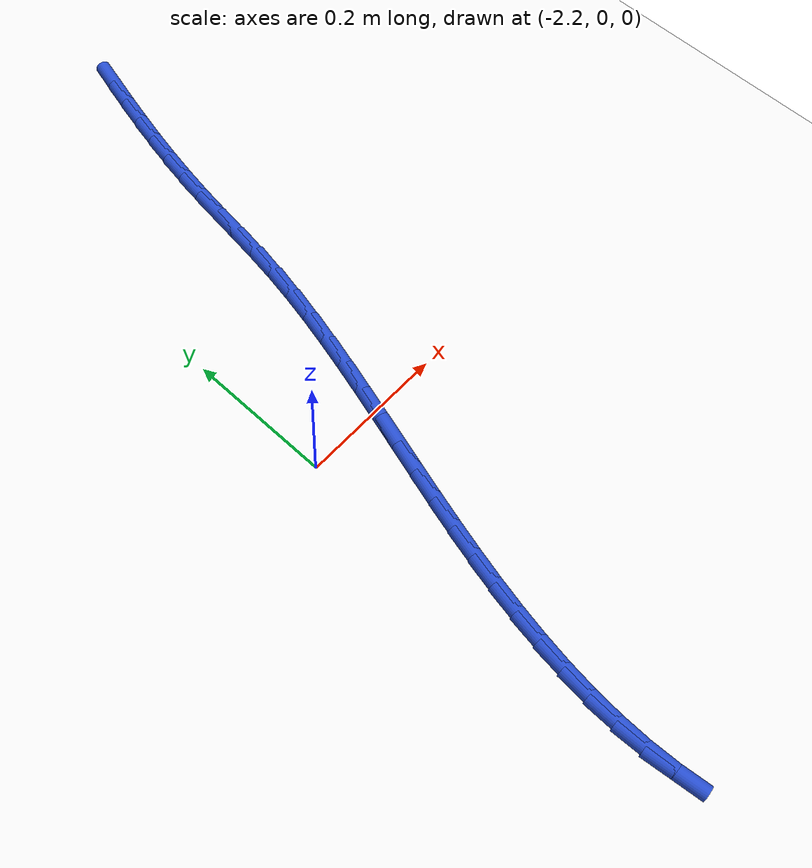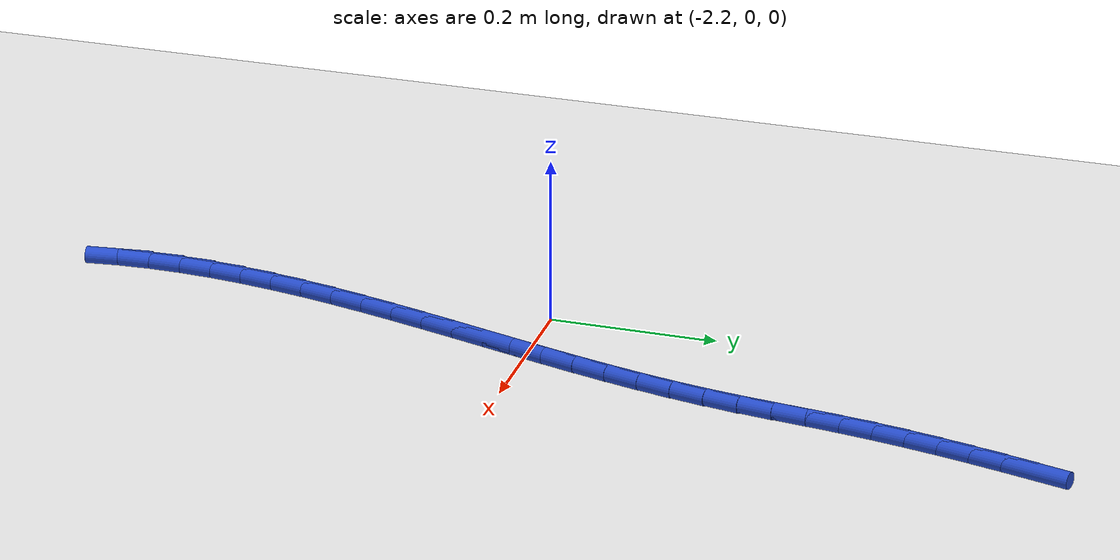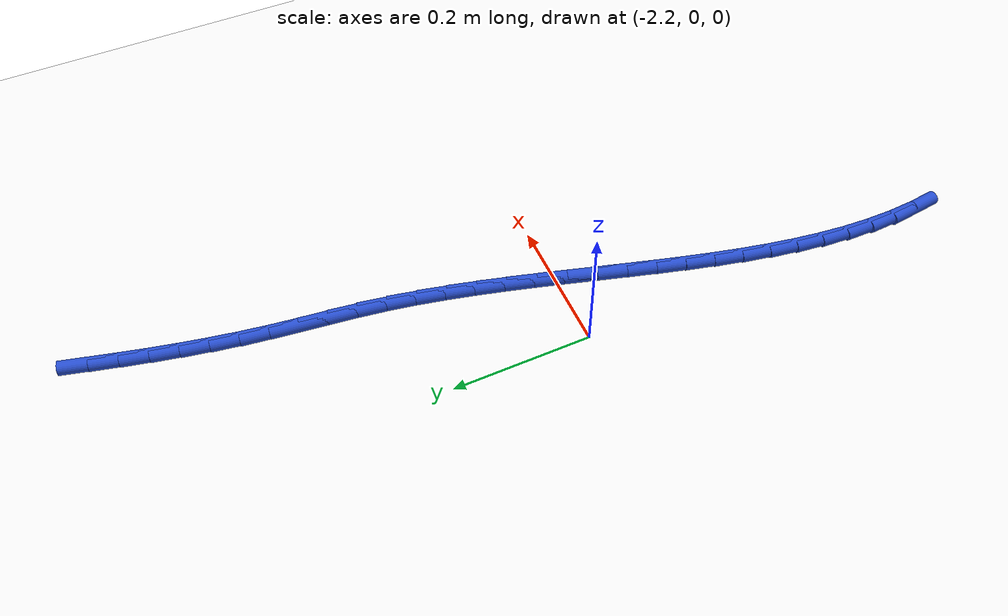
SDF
<sdf version="1.6">
 <world name="default">
  <model name="ground_plane">
   <static>1</static>
   <link name="link">
    <collision name="collision">
     <geometry><plane><normal>0 0 1</normal><size>100 100</size></plane></geometry>
     <surface><friction><ode><mu>100</mu><mu2>50</mu2></ode></friction></surface>
    </collision>
    <visual name="visual">
     <cast_shadows>0</cast_shadows>
     <geometry><plane><normal>0 0 1</normal><size>100 100</size></plane></geometry>
     <material>
      <script><uri>file://media/materials/scripts/gazebo.material</uri><name>Gazebo/WhiteGlow</name></script>
     </material>
    </visual>
   </link>
  </model>
  <model name="line">
   <link name="link_76">
    <pose>-1.968992026490495 0.6249310614358464 0.01 0 1.57 1.316810926799928</pose>
    <collision name="collision">
     <geometry><cylinder><radius>0.01</radius><length>0.08</length></cylinder></geometry>
    </collision>
    <visual name="visual">
     <material>
      <script><name>Gazebo/Blue</name><uri>file://media/materials/scripts/gazebo.material</uri></script>
     </material>
     <geometry><cylinder><radius>0.01</radius><length>0.08</length></cylinder></geometry>
    </visual>
   </link>
   <link name="link_77">
    <pose>-1.9790091456624832 0.5863430544383781 0.01 0 1.57 1.3313389313057982</pose>
    <collision name="collision">
     <geometry><cylinder><radius>0.01</radius><length>0.08</length></cylinder></geometry>
    </collision>
    <visual name="visual">
     <material>
      <script><name>Gazebo/Blue</name><uri>file://media/materials/scripts/gazebo.material</uri></script>
     </material>
     <geometry><cylinder><radius>0.01</radius><length>0.08</length></cylinder></geometry>
    </visual>
   </link>
   <link name="link_78">
    <pose>-1.9883876666445914 0.5479287984855871 0.01 0 1.57 1.348613456572809</pose>
    <collision name="collision">
     <geometry><cylinder><radius>0.01</radius><length>0.08</length></cylinder></geometry>
    </collision>
    <visual name="visual">
     <material>
      <script><name>Gazebo/Blue</name><uri>file://media/materials/scripts/gazebo.material</uri></script>
     </material>
     <geometry><cylinder><radius>0.01</radius><length>0.08</length></cylinder></geometry>
    </visual>
   </link>
   <link name="link_79">
    <pose>-1.9970575559134733 0.509551610148036 0.01 0 1.57 1.3685109553980592</pose>
    <collision name="collision">
     <geometry><cylinder><radius>0.01</radius><length>0.08</length></cylinder></geometry>
    </collision>
    <visual name="visual">
     <material>
      <script><name>Gazebo/Blue</name><uri>file://media/materials/scripts/gazebo.material</uri></script>
     </material>
     <geometry><cylinder><radius>0.01</radius><length>0.08</length></cylinder></geometry>
    </visual>
   </link>
   <link name="link_80">
    <pose>-2.004948779945782 0.47107480599628687 0.01 0 1.57 1.3908483317824356</pose>
    <collision name="collision">
     <geometry><cylinder><radius>0.01</radius><length>0.08</length></cylinder></geometry>
    </collision>
    <visual name="visual">
     <material>
      <script><name>Gazebo/Blue</name><uri>file://media/materials/scripts/gazebo.material</uri></script>
     </material>
     <geometry><cylinder><radius>0.01</radius><length>0.08</length></cylinder></geometry>
    </visual>
   </link>
   <link name="link_81">
    <pose>-2.011991305218171 0.4323617026009032 0.01 0 1.57 1.415385228566214</pose>
    <collision name="collision">
     <geometry><cylinder><radius>0.01</radius><length>0.08</length></cylinder></geometry>
    </collision>
    <visual name="visual">
     <material>
      <script><name>Gazebo/Blue</name><uri>file://media/materials/scripts/gazebo.material</uri></script>
     </material>
     <geometry><cylinder><radius>0.01</radius><length>0.08</length></cylinder></geometry>
    </visual>
   </link>
   <link name="link_82">
    <pose>-2.0181150982072933 0.39327561653244747 0.01 0 1.57 1.4399738764803132</pose>
    <collision name="collision">
     <geometry><cylinder><radius>0.01</radius><length>0.08</length></cylinder></geometry>
    </collision>
    <visual name="visual">
     <material>
      <script><name>Gazebo/Blue</name><uri>file://media/materials/scripts/gazebo.material</uri></script>
     </material>
     <geometry><cylinder><radius>0.01</radius><length>0.08</length></cylinder></geometry>
    </visual>
   </link>
   <link name="link_83">
    <pose>-2.0233217086849318 0.3537038637377302 0.01 0 1.57 1.4519085063891006</pose>
    <collision name="collision">
     <geometry><cylinder><radius>0.01</radius><length>0.08</length></cylinder></geometry>
    </collision>
    <visual name="visual">
     <material>
      <script><name>Gazebo/Blue</name><uri>file://media/materials/scripts/gazebo.material</uri></script>
     </material>
     <geometry><cylinder><radius>0.01</radius><length>0.08</length></cylinder></geometry>
    </visual>
   </link>
   <link name="link_84">
    <pose>-2.0281005359758533 0.3136973190630746 0.01 0 1.57 1.4463514690864652</pose>
    <collision name="collision">
     <geometry><cylinder><radius>0.01</radius><length>0.08</length></cylinder></geometry>
    </collision>
    <visual name="visual">
     <material>
      <script><name>Gazebo/Blue</name><uri>file://media/materials/scripts/gazebo.material</uri></script>
     </material>
     <geometry><cylinder><radius>0.01</radius><length>0.08</length></cylinder></geometry>
    </visual>
   </link>
   <link name="link_85">
    <pose>-2.033144494877859 0.273375088977849 0.01 0 1.57 1.4237324200178538</pose>
    <collision name="collision">
     <geometry><cylinder><radius>0.01</radius><length>0.08</length></cylinder></geometry>
    </collision>
    <visual name="visual">
     <material>
      <script><name>Gazebo/Blue</name><uri>file://media/materials/scripts/gazebo.material</uri></script>
     </material>
     <geometry><cylinder><radius>0.01</radius><length>0.08</length></cylinder></geometry>
    </visual>
   </link>
   <link name="link_86">
    <pose>-2.039146658129589 0.2328564485986555 0.01 0 1.57 1.3900089273853904</pose>
    <collision name="collision">
     <geometry><cylinder><radius>0.01</radius><length>0.08</length></cylinder></geometry>
    </collision>
    <visual name="visual">
     <material>
      <script><name>Gazebo/Blue</name><uri>file://media/materials/scripts/gazebo.material</uri></script>
     </material>
     <geometry><cylinder><radius>0.01</radius><length>0.08</length></cylinder></geometry>
    </visual>
   </link>
   <link name="link_87">
    <pose>-2.0465715702535596 0.19223501597412374 0.01 0 1.57 1.3595765101723378</pose>
    <collision name="collision">
     <geometry><cylinder><radius>0.01</radius><length>0.08</length></cylinder></geometry>
    </collision>
    <visual name="visual">
     <material>
      <script><name>Gazebo/Blue</name><uri>file://media/materials/scripts/gazebo.material</uri></script>
     </material>
     <geometry><cylinder><radius>0.01</radius><length>0.08</length></cylinder></geometry>
    </visual>
   </link>
   <link name="link_88">
    <pose>-2.0552976146788478 0.151538600320735 0.01 0 1.57 1.3345104978542286</pose>
    <collision name="collision">
     <geometry><cylinder><radius>0.01</radius><length>0.08</length></cylinder></geometry>
    </collision>
    <visual name="visual">
     <material>
      <script><name>Gazebo/Blue</name><uri>file://media/materials/scripts/gazebo.material</uri></script>
     </material>
     <geometry><cylinder><radius>0.01</radius><length>0.08</length></cylinder></geometry>
    </visual>
   </link>
   <link name="link_89">
    <pose>-2.0651105102949843 0.11078460732393372 0.01 0 1.57 1.3146155880673216</pose>
    <collision name="collision">
     <geometry><cylinder><radius>0.01</radius><length>0.08</length></cylinder></geometry>
    </collision>
    <visual name="visual">
     <material>
      <script><name>Gazebo/Blue</name><uri>file://media/materials/scripts/gazebo.material</uri></script>
     </material>
     <geometry><cylinder><radius>0.01</radius><length>0.08</length></cylinder></geometry>
    </visual>
   </link>
   <link name="link_90">
    <pose>-2.075795975991503 0.06999044266916296 0.01 0 1.57 1.2997194185854013</pose>
    <collision name="collision">
     <geometry><cylinder><radius>0.01</radius><length>0.08</length></cylinder></geometry>
    </collision>
    <visual name="visual">
     <material>
      <script><name>Gazebo/Blue</name><uri>file://media/materials/scripts/gazebo.material</uri></script>
     </material>
     <geometry><cylinder><radius>0.01</radius><length>0.08</length></cylinder></geometry>
    </visual>
   </link>
   <link name="link_91">
    <pose>-2.087139730657936 0.029173512041866433 0.01 0 1.57 1.2896849483638797</pose>
    <collision name="collision">
     <geometry><cylinder><radius>0.01</radius><length>0.08</length></cylinder></geometry>
    </collision>
    <visual name="visual">
     <material>
      <script><name>Gazebo/Blue</name><uri>file://media/materials/scripts/gazebo.material</uri></script>
     </material>
     <geometry><cylinder><radius>0.01</radius><length>0.08</length></cylinder></geometry>
    </visual>
   </link>
   <link name="link_92">
    <pose>-2.0989274931838175 -0.011648778872513216 0.01 0 1.57 1.2844184457454209</pose>
    <collision name="collision">
     <geometry><cylinder><radius>0.01</radius><length>0.08</length></cylinder></geometry>
    </collision>
    <visual name="visual">
     <material>
      <script><name>Gazebo/Blue</name><uri>file://media/materials/scripts/gazebo.material</uri></script>
     </material>
     <geometry><cylinder><radius>0.01</radius><length>0.08</length></cylinder></geometry>
    </visual>
   </link>
   <link name="link_93">
    <pose>-2.1109449824586792 -0.0524590243885307 0.01 0 1.57 1.2838743143817035</pose>
    <collision name="collision">
     <geometry><cylinder><radius>0.01</radius><length>0.08</length></cylinder></geometry>
    </collision>
    <visual name="visual">
     <material>
      <script><name>Gazebo/Blue</name><uri>file://media/materials/scripts/gazebo.material</uri></script>
     </material>
     <geometry><cylinder><radius>0.01</radius><length>0.08</length></cylinder></geometry>
    </visual>
   </link>
   <link name="link_94">
    <pose>-2.122977917372053 -0.09323981882074328 0.01 0 1.57 1.2880575933741467</pose>
    <collision name="collision">
     <geometry><cylinder><radius>0.01</radius><length>0.08</length></cylinder></geometry>
    </collision>
    <visual name="visual">
     <material>
      <script><name>Gazebo/Blue</name><uri>file://media/materials/scripts/gazebo.material</uri></script>
     </material>
     <geometry><cylinder><radius>0.01</radius><length>0.08</length></cylinder></geometry>
    </visual>
   </link>
   <link name="link_95">
    <pose>-2.1348120168134734 -0.13397375648370735 0.01 0 1.57 1.2970245586663993</pose>
    <collision name="collision">
     <geometry><cylinder><radius>0.01</radius><length>0.08</length></cylinder></geometry>
    </collision>
    <visual name="visual">
     <material>
      <script><name>Gazebo/Blue</name><uri>file://media/materials/scripts/gazebo.material</uri></script>
     </material>
     <geometry><cylinder><radius>0.01</radius><length>0.08</length></cylinder></geometry>
    </visual>
   </link>
   <link name="link_96">
    <pose>-2.1462329996724723 -0.17464343169197938 0.01 0 1.57 1.3108814419926507</pose>
    <collision name="collision">
     <geometry><cylinder><radius>0.01</radius><length>0.08</length></cylinder></geometry>
    </collision>
    <visual name="visual">
     <material>
      <script><name>Gazebo/Blue</name><uri>file://media/materials/scripts/gazebo.material</uri></script>
     </material>
     <geometry><cylinder><radius>0.01</radius><length>0.08</length></cylinder></geometry>
    </visual>
   </link>
   <link name="link_97">
    <pose>-2.157026584838583 -0.21523143876011577 0.01 0 1.57 1.3297808629015981</pose>
    <collision name="collision">
     <geometry><cylinder><radius>0.01</radius><length>0.08</length></cylinder></geometry>
    </collision>
    <visual name="visual">
     <material>
      <script><name>Gazebo/Blue</name><uri>file://media/materials/scripts/gazebo.material</uri></script>
     </material>
     <geometry><cylinder><radius>0.01</radius><length>0.08</length></cylinder></geometry>
    </visual>
   </link>
   <link name="link_98">
    <pose>-2.1669784912013372 -0.2557203720026737 0.01 0 1.57 1.3539151271240013</pose>
    <collision name="collision">
     <geometry><cylinder><radius>0.01</radius><length>0.08</length></cylinder></geometry>
    </collision>
    <visual name="visual">
     <material>
      <script><name>Gazebo/Blue</name><uri>file://media/materials/scripts/gazebo.material</uri></script>
     </material>
     <geometry><cylinder><radius>0.01</radius><length>0.08</length></cylinder></geometry>
    </visual>
   </link>
   <link name="link_99">
    <pose>-2.1758744376502688 -0.2960928257342079 0.01 0 1.57 1.3835050877571542</pose>
    <collision name="collision">
     <geometry><cylinder><radius>0.01</radius><length>0.08</length></cylinder></geometry>
    </collision>
    <visual name="visual">
     <material>
      <script><name>Gazebo/Blue</name><uri>file://media/materials/scripts/gazebo.material</uri></script>
     </material>
     <geometry><cylinder><radius>0.01</radius><length>0.08</length></cylinder></geometry>
    </visual>
   </link>
   <link name="link_100">
    <pose>-2.1835001430749106 -0.3363313942692759 0.01 0 1.57 1.4187828471021064</pose>
    <collision name="collision">
     <geometry><cylinder><radius>0.01</radius><length>0.08</length></cylinder></geometry>
    </collision>
    <visual name="visual">
     <material>
      <script><name>Gazebo/Blue</name><uri>file://media/materials/scripts/gazebo.material</uri></script>
     </material>
     <geometry><cylinder><radius>0.01</radius><length>0.08</length></cylinder></geometry>
    </visual>
   </link>
   <link name="link_101">
    <pose>-2.1896413263647947 -0.3764186719224338 0.01 0 1.57 1.4599663323045848</pose>
    <collision name="collision">
     <geometry><cylinder><radius>0.01</radius><length>0.08</length></cylinder></geometry>
    </collision>
    <visual name="visual">
     <material>
      <script><name>Gazebo/Blue</name><uri>file://media/materials/scripts/gazebo.material</uri></script>
     </material>
     <geometry><cylinder><radius>0.01</radius><length>0.08</length></cylinder></geometry>
    </visual>
   </link>
   <link name="link_102">
    <pose>-2.1940837064094536 -0.4163372530082382 0.01 0 1.57 1.507223967144351</pose>
    <collision name="collision">
     <geometry><cylinder><radius>0.01</radius><length>0.08</length></cylinder></geometry>
    </collision>
    <visual name="visual">
     <material>
      <script><name>Gazebo/Blue</name><uri>file://media/materials/scripts/gazebo.material</uri></script>
     </material>
     <geometry><cylinder><radius>0.01</radius><length>0.08</length></cylinder></geometry>
    </visual>
   </link>
   <link name="link_103">
    <pose>-2.1966130020984216 -0.4560697318412463 0.01 0 1.57 1.5606286861258687</pose>
    <collision name="collision">
     <geometry><cylinder><radius>0.01</radius><length>0.08</length></cylinder></geometry>
    </collision>
    <visual name="visual">
     <material>
      <script><name>Gazebo/Blue</name><uri>file://media/materials/scripts/gazebo.material</uri></script>
     </material>
     <geometry><cylinder><radius>0.01</radius><length>0.08</length></cylinder></geometry>
    </visual>
   </link>
   <link name="link_104">
    <pose>-2.19701493232123 -0.49559870273601286 0.01 0 1.57 -1.5214897894160782</pose>
    <collision name="collision">
     <geometry><cylinder><radius>0.01</radius><length>0.08</length></cylinder></geometry>
    </collision>
    <visual name="visual">
     <material>
      <script><name>Gazebo/Blue</name><uri>file://media/materials/scripts/gazebo.material</uri></script>
     </material>
     <geometry><cylinder><radius>0.01</radius><length>0.08</length></cylinder></geometry>
    </visual>
   </link>
   <link name="link_105">
    <pose>-2.1950752159674125 -0.5349067600070951 0.01 0 1.57 -1.4562330107730221</pose>
    <collision name="collision">
     <geometry><cylinder><radius>0.01</radius><length>0.08</length></cylinder></geometry>
    </collision>
    <visual name="visual">
     <material>
      <script><name>Gazebo/Blue</name><uri>file://media/materials/scripts/gazebo.material</uri></script>
     </material>
     <geometry><cylinder><radius>0.01</radius><length>0.08</length></cylinder></geometry>
    </visual>
   </link>
  </model>
 </world>
</sdf>
